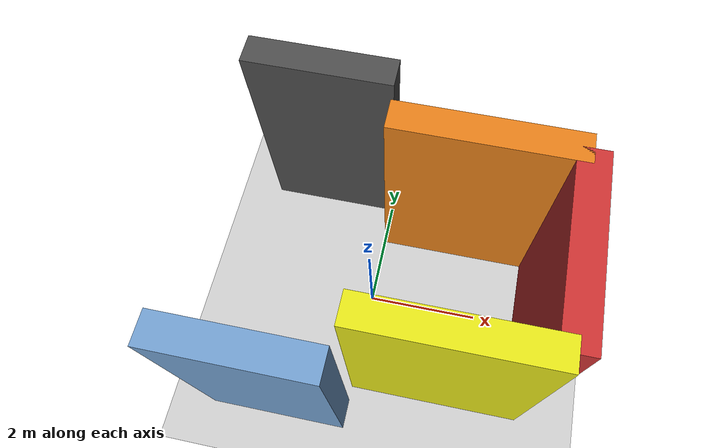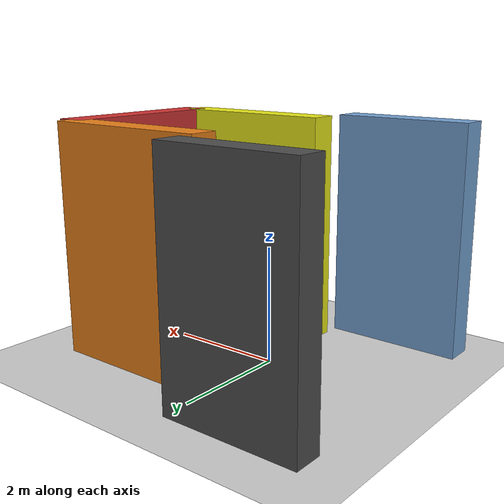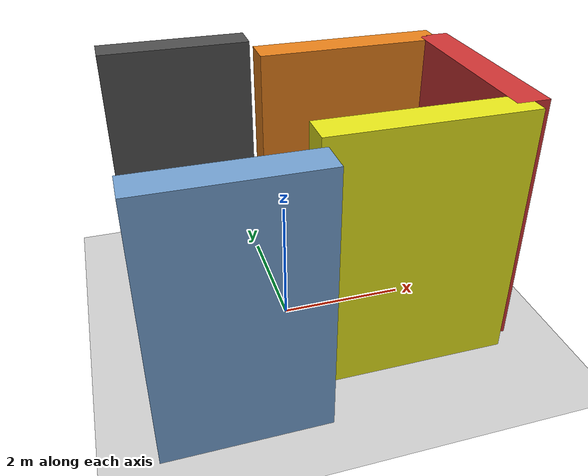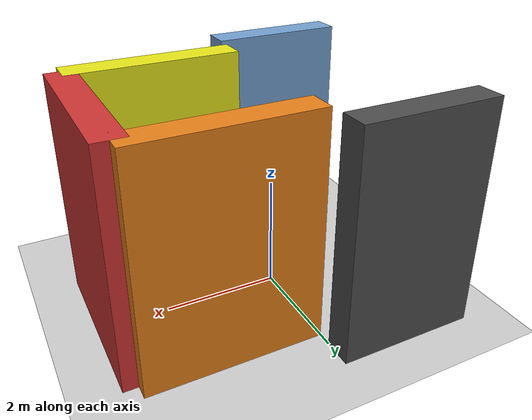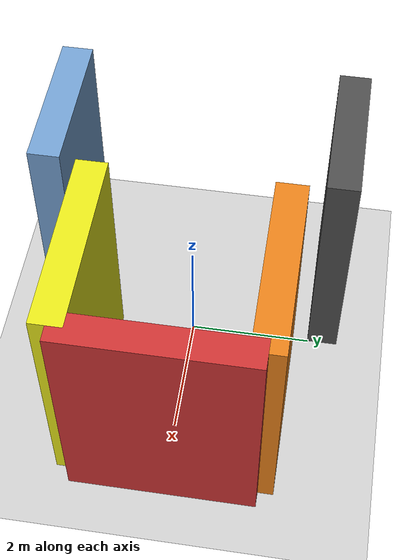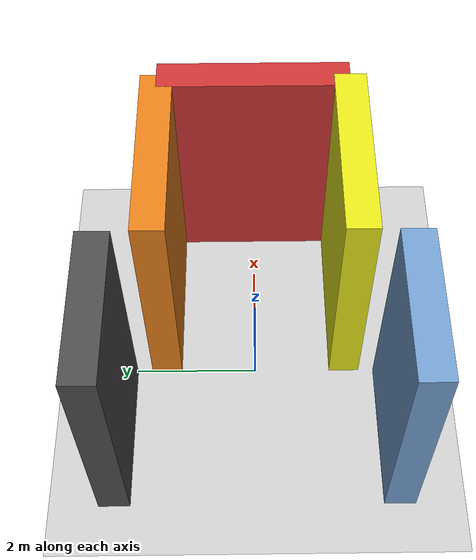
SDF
<?xml version='1.0'?>
<sdf version='1.6'>
  <world name='default'>
    <!-- Sun light -->
    <light name='sun' type='directional'>
      <cast_shadows>1</cast_shadows>
      <pose>0 0 10 0 0 0</pose>
      <diffuse>0.8 0.8 0.8 1</diffuse>
      <specular>0.2 0.2 0.2 1</specular>
      <attenuation>
        <range>1000</range>
        <constant>0.9</constant>
        <linear>0.01</linear>
        <quadratic>0.001</quadratic>
      </attenuation>
      <direction>-0.5 0.1 -0.9</direction>
    </light>

    <!-- Ground plane -->
    <model name='ground_plane'>
      <static>1</static>
      <link name='link'>
        <collision name='collision'>
          <geometry>
            <plane>
              <normal>0 0 1</normal>
              <size>100 100</size>
            </plane>
          </geometry>
          <surface>
            <contact>
              <collide_bitmask>65535</collide_bitmask>
              <ode/>
            </contact>
            <friction>
              <ode>
                <mu>100</mu>
                <mu2>50</mu2>
              </ode>
              <torsional><ode/></torsional>
            </friction>
            <bounce/>
          </surface>
          <max_contacts>10</max_contacts>
        </collision>
        <visual name='visual'>
          <cast_shadows>0</cast_shadows>
          <geometry>
            <plane>
              <normal>0 0 1</normal>
              <size>100 100</size>
            </plane>
          </geometry>
          <material>
            <script>
              <uri>file://media/materials/scripts/gazebo.material</uri>
              <n>Gazebo/Grey</n>
            </script>
          </material>
        </visual>
      </link>
    </model>

    <!-- Environment -->
    <magnetic_field>6e-06 2.3e-05 -4.2e-05</magnetic_field>
    <atmosphere type='adiabatic'/>
    <physics name='default_physics' default='0' type='ode'>
      <gravity>0 0 -9.8</gravity>
      <max_step_size>0.004</max_step_size>
      <real_time_factor>1</real_time_factor>
      <real_time_update_rate>250</real_time_update_rate>
    </physics>
    <scene>
      <ambient>0.4 0.4 0.4 1</ambient>
      <background>0.7 0.7 0.7 1</background>
      <shadows>1</shadows>
    </scene>
    <wind/>
    <spherical_coordinates>
      <surface_model>EARTH_WGS84</surface_model>
      <latitude_deg>0</latitude_deg>
      <longitude_deg>0</longitude_deg>
      <elevation>0</elevation>
      <heading_deg>0</heading_deg>
    </spherical_coordinates>

    <!-- ============ OBSTACLES (5) ============ -->
    <model name='trap_left'>
      <static>1</static>
      <link name='link'>
        <visual name='visual'>
          <geometry>
            <box>
              <size>3.0000 0.5000 4.0000</size>
            </box>
          </geometry>
          <material>
            <script>
              <n>Gazebo/Yellow</n>
              <uri>file://media/materials/scripts/gazebo.material</uri>
            </script>
            <ambient>0.9 0.9 0.1 1</ambient>
          </material>
        </visual>
        <collision name='collision'>
          <geometry>
            <box>
              <size>3.0000 0.5000 4.0000</size>
            </box>
          </geometry>
          <max_contacts>10</max_contacts>
          <surface>
            <contact><ode/></contact>
            <bounce/>
            <friction>
              <ode><mu>1</mu><mu2>1</mu2></ode>
              <torsional><ode/></torsional>
            </friction>
          </surface>
        </collision>
      </link>
      <pose>1.5000 -1.5000 2.0000 0 0 0.0000</pose>
    </model>

    <model name='trap_right'>
      <static>1</static>
      <link name='link'>
        <visual name='visual'>
          <geometry>
            <box>
              <size>3.0000 0.5000 4.0000</size>
            </box>
          </geometry>
          <material>
            <script>
              <n>Gazebo/Orange</n>
              <uri>file://media/materials/scripts/gazebo.material</uri>
            </script>
            <ambient>0.9 0.5 0.1 1</ambient>
          </material>
        </visual>
        <collision name='collision'>
          <geometry>
            <box>
              <size>3.0000 0.5000 4.0000</size>
            </box>
          </geometry>
          <max_contacts>10</max_contacts>
          <surface>
            <contact><ode/></contact>
            <bounce/>
            <friction>
              <ode><mu>1</mu><mu2>1</mu2></ode>
              <torsional><ode/></torsional>
            </friction>
          </surface>
        </collision>
      </link>
      <pose>1.5000 1.5000 2.0000 0 0 0.0000</pose>
    </model>

    <model name='trap_back'>
      <static>1</static>
      <link name='link'>
        <visual name='visual'>
          <geometry>
            <box>
              <size>0.5000 3.0000 4.0000</size>
            </box>
          </geometry>
          <material>
            <script>
              <n>Gazebo/Red</n>
              <uri>file://media/materials/scripts/gazebo.material</uri>
            </script>
            <ambient>0.8 0.2 0.2 1</ambient>
          </material>
        </visual>
        <collision name='collision'>
          <geometry>
            <box>
              <size>0.5000 3.0000 4.0000</size>
            </box>
          </geometry>
          <max_contacts>10</max_contacts>
          <surface>
            <contact><ode/></contact>
            <bounce/>
            <friction>
              <ode><mu>1</mu><mu2>1</mu2></ode>
              <torsional><ode/></torsional>
            </friction>
          </surface>
        </collision>
      </link>
      <pose>3.0000 0.0000 2.0000 0 0 0.0000</pose>
    </model>

    <model name='trap_funnel_l'>
      <static>1</static>
      <link name='link'>
        <visual name='visual'>
          <geometry>
            <box>
              <size>2.4000 0.5000 4.0000</size>
            </box>
          </geometry>
          <material>
            <script>
              <n>Gazebo/Blue</n>
              <uri>file://media/materials/scripts/gazebo.material</uri>
            </script>
            <ambient>0.447 0.624 0.812 1</ambient>
          </material>
        </visual>
        <collision name='collision'>
          <geometry>
            <box>
              <size>2.4000 0.5000 4.0000</size>
            </box>
          </geometry>
          <max_contacts>10</max_contacts>
          <surface>
            <contact><ode/></contact>
            <bounce/>
            <friction>
              <ode><mu>1</mu><mu2>1</mu2></ode>
              <torsional><ode/></torsional>
            </friction>
          </surface>
        </collision>
      </link>
      <pose>-1.2000 -2.2500 2.0000 0 0 0.0000</pose>
    </model>

    <model name='trap_funnel_r'>
      <static>1</static>
      <link name='link'>
        <visual name='visual'>
          <geometry>
            <box>
              <size>2.4000 0.5000 4.0000</size>
            </box>
          </geometry>
          <material>
            <script>
              <n>Gazebo/DarkGrey</n>
              <uri>file://media/materials/scripts/gazebo.material</uri>
            </script>
            <ambient>0.3 0.3 0.3 1</ambient>
          </material>
        </visual>
        <collision name='collision'>
          <geometry>
            <box>
              <size>2.4000 0.5000 4.0000</size>
            </box>
          </geometry>
          <max_contacts>10</max_contacts>
          <surface>
            <contact><ode/></contact>
            <bounce/>
            <friction>
              <ode><mu>1</mu><mu2>1</mu2></ode>
              <torsional><ode/></torsional>
            </friction>
          </surface>
        </collision>
      </link>
      <pose>-1.2000 2.2500 2.0000 0 0 0.0000</pose>
    </model>

    <!-- GUI camera -->
    <gui fullscreen='0'>
      <camera name='user_camera'>
        <pose>-15 0 18 0 0.85 0.15</pose>
        <view_controller>orbit</view_controller>
        <projection_type>perspective</projection_type>
      </camera>
    </gui>
  </world>
</sdf>
